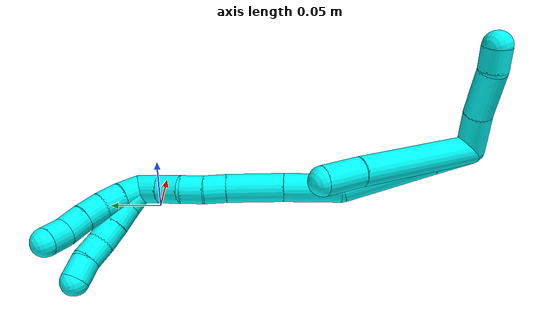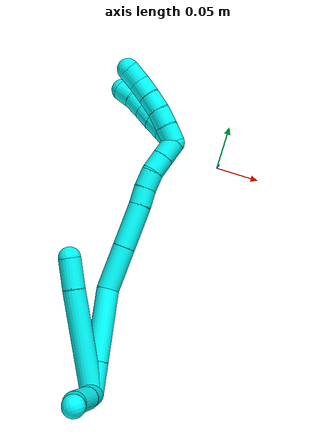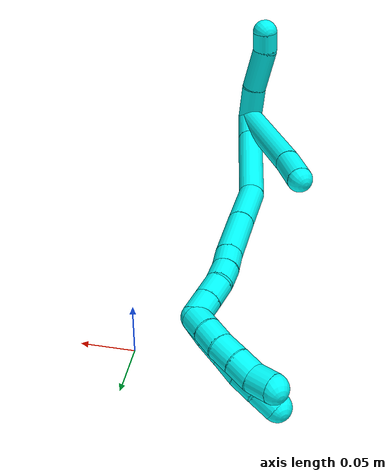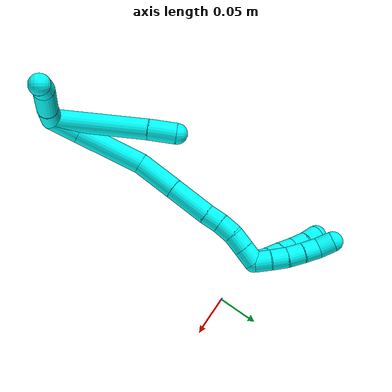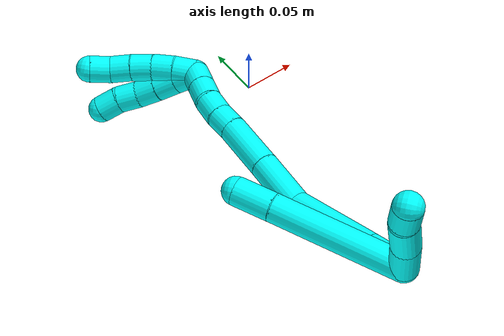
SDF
<sdf version="1.7">
 <world name="default">
  <model name="3">
   <static>0</static>
   <link name="3">
    <collision name="collision-cylinder-e_1_2_8">
     <pose>-0.012363 0.004339 -0.056637 -3.06513 -0.214303 2.45824</pose>
     <geometry><cylinder><radius>0.0125</radius><length>0.116265</length></cylinder></geometry>
     <surface>
      <friction><ode><mu>1.16</mu><mu2>1.16</mu2><slip1>0</slip1><slip2>0</slip2></ode></friction>
      <contact><ode><kp>1e+06</kp><kd>1</kd><max_vel>0</max_vel><min_depth>0.001</min_depth></ode></contact>
     </surface>
    </collision>
    <visual name="visual-cylinder-e_1_2_8">
     <pose>-0.012363 0.004339 -0.056637 -3.06513 -0.214303 2.45824</pose>
     <geometry><cylinder><radius>0.0125</radius><length>0.116265</length></cylinder></geometry>
     <material><ambient>0.003922 1 0.996078 1</ambient></material>
    </visual>
    <collision name="collision-cylinder-e_2_8_6">
     <pose>-0.027631 0.01086 -0.129745 -3.0099 -0.173122 1.84202</pose>
     <geometry><cylinder><radius>0.0125</radius><length>0.033735</length></cylinder></geometry>
     <surface>
      <friction><ode><mu>1.16</mu><mu2>1.16</mu2><slip1>0</slip1><slip2>0</slip2></ode></friction>
      <contact><ode><kp>1e+06</kp><kd>1</kd><max_vel>0</max_vel><min_depth>0.001</min_depth></ode></contact>
     </surface>
    </collision>
    <visual name="visual-cylinder-e_2_8_6">
     <pose>-0.027631 0.01086 -0.129745 -3.0099 -0.173122 1.84202</pose>
     <geometry><cylinder><radius>0.0125</radius><length>0.033735</length></cylinder></geometry>
     <material><ambient>0.003922 1 0.996078 1</ambient></material>
    </visual>
    <collision name="collision-cylinder-e_1_2_9">
     <pose>-0.015272 -0.009815 0.000719 1.49771 -0.998368 -0.938116</pose>
     <geometry><cylinder><radius>0.0125</radius><length>0.036338</length></cylinder></geometry>
     <surface>
      <friction><ode><mu>1.16</mu><mu2>1.16</mu2><slip1>0</slip1><slip2>0</slip2></ode></friction>
      <contact><ode><kp>1e+06</kp><kd>1</kd><max_vel>0</max_vel><min_depth>0.001</min_depth></ode></contact>
     </surface>
    </collision>
    <visual name="visual-cylinder-e_1_2_9">
     <pose>-0.015272 -0.009815 0.000719 1.49771 -0.998368 -0.938116</pose>
     <geometry><cylinder><radius>0.0125</radius><length>0.036338</length></cylinder></geometry>
     <material><ambient>0.003922 1 0.996078 1</ambient></material>
    </visual>
    <collision name="collision-cylinder-e_2_9_10">
     <pose>-0.047089 -0.033804 0.00138 1.57485 -0.862434 -0.86552</pose>
     <geometry><cylinder><radius>0.0125</radius><length>0.04357</length></cylinder></geometry>
     <surface>
      <friction><ode><mu>1.16</mu><mu2>1.16</mu2><slip1>0</slip1><slip2>0</slip2></ode></friction>
      <contact><ode><kp>1e+06</kp><kd>1</kd><max_vel>0</max_vel><min_depth>0.001</min_depth></ode></contact>
     </surface>
    </collision>
    <visual name="visual-cylinder-e_2_9_10">
     <pose>-0.047089 -0.033804 0.00138 1.57485 -0.862434 -0.86552</pose>
     <geometry><cylinder><radius>0.0125</radius><length>0.04357</length></cylinder></geometry>
     <material><ambient>0.003922 1 0.996078 1</ambient></material>
    </visual>
    <collision name="collision-cylinder-e_3_10_5">
     <pose>-0.072526 -0.05247 0.002607 1.29238 -1.08695 -0.855116</pose>
     <geometry><cylinder><radius>0.0125</radius><length>0.020093</length></cylinder></geometry>
     <surface>
      <friction><ode><mu>1.16</mu><mu2>1.16</mu2><slip1>0</slip1><slip2>0</slip2></ode></friction>
      <contact><ode><kp>1e+06</kp><kd>1</kd><max_vel>0</max_vel><min_depth>0.001</min_depth></ode></contact>
     </surface>
    </collision>
    <visual name="visual-cylinder-e_3_10_5">
     <pose>-0.072526 -0.05247 0.002607 1.29238 -1.08695 -0.855116</pose>
     <geometry><cylinder><radius>0.0125</radius><length>0.020093</length></cylinder></geometry>
     <material><ambient>0.003922 1 0.996078 1</ambient></material>
    </visual>
    <collision name="collision-cylinder-e_1_2_11">
     <pose>-0.001261 0.008279 -0.015711 -2.6566 -0.070871 0.284689</pose>
     <geometry><cylinder><radius>0.0125</radius><length>0.035608</length></cylinder></geometry>
     <surface>
      <friction><ode><mu>1.16</mu><mu2>1.16</mu2><slip1>0</slip1><slip2>0</slip2></ode></friction>
      <contact><ode><kp>1e+06</kp><kd>1</kd><max_vel>0</max_vel><min_depth>0.001</min_depth></ode></contact>
     </surface>
    </collision>
    <visual name="visual-cylinder-e_1_2_11">
     <pose>-0.001261 0.008279 -0.015711 -2.6566 -0.070871 0.284689</pose>
     <geometry><cylinder><radius>0.0125</radius><length>0.035608</length></cylinder></geometry>
     <material><ambient>0.003922 1 0.996078 1</ambient></material>
    </visual>
    <collision name="collision-cylinder-e_2_11_12">
     <pose>-0.005112 0.035639 -0.067488 -2.65498 -0.063401 0.254128</pose>
     <geometry><cylinder><radius>0.0125</radius><length>0.081768</length></cylinder></geometry>
     <surface>
      <friction><ode><mu>1.16</mu><mu2>1.16</mu2><slip1>0</slip1><slip2>0</slip2></ode></friction>
      <contact><ode><kp>1e+06</kp><kd>1</kd><max_vel>0</max_vel><min_depth>0.001</min_depth></ode></contact>
     </surface>
    </collision>
    <visual name="visual-cylinder-e_2_11_12">
     <pose>-0.005112 0.035639 -0.067488 -2.65498 -0.063401 0.254128</pose>
     <geometry><cylinder><radius>0.0125</radius><length>0.081768</length></cylinder></geometry>
     <material><ambient>0.003922 1 0.996078 1</ambient></material>
    </visual>
    <collision name="collision-cylinder-e_3_12_13">
     <pose>-0.016275 0.068397 -0.122696 -2.52119 -0.349407 1.00665</pose>
     <geometry><cylinder><radius>0.0125</radius><length>0.050081</length></cylinder></geometry>
     <surface>
      <friction><ode><mu>1.16</mu><mu2>1.16</mu2><slip1>0</slip1><slip2>0</slip2></ode></friction>
      <contact><ode><kp>1e+06</kp><kd>1</kd><max_vel>0</max_vel><min_depth>0.001</min_depth></ode></contact>
     </surface>
    </collision>
    <visual name="visual-cylinder-e_3_12_13">
     <pose>-0.016275 0.068397 -0.122696 -2.52119 -0.349407 1.00665</pose>
     <geometry><cylinder><radius>0.0125</radius><length>0.050081</length></cylinder></geometry>
     <material><ambient>0.003922 1 0.996078 1</ambient></material>
    </visual>
    <collision name="collision-cylinder-e_4_13_14">
     <pose>-0.032665 0.096115 -0.16101 -2.50949 -0.317854 0.911443</pose>
     <geometry><cylinder><radius>0.0125</radius><length>0.05003</length></cylinder></geometry>
     <surface>
      <friction><ode><mu>1.16</mu><mu2>1.16</mu2><slip1>0</slip1><slip2>0</slip2></ode></friction>
      <contact><ode><kp>1e+06</kp><kd>1</kd><max_vel>0</max_vel><min_depth>0.001</min_depth></ode></contact>
     </surface>
    </collision>
    <visual name="visual-cylinder-e_4_13_14">
     <pose>-0.032665 0.096115 -0.16101 -2.50949 -0.317854 0.911443</pose>
     <geometry><cylinder><radius>0.0125</radius><length>0.05003</length></cylinder></geometry>
     <material><ambient>0.003922 1 0.996078 1</ambient></material>
    </visual>
    <collision name="collision-cylinder-e_5_14_15">
     <pose>-0.043286 0.115294 -0.188294 -2.57694 -0.283953 0.915683</pose>
     <geometry><cylinder><radius>0.0125</radius><length>0.02001</length></cylinder></geometry>
     <surface>
      <friction><ode><mu>1.16</mu><mu2>1.16</mu2><slip1>0</slip1><slip2>0</slip2></ode></friction>
      <contact><ode><kp>1e+06</kp><kd>1</kd><max_vel>0</max_vel><min_depth>0.001</min_depth></ode></contact>
     </surface>
    </collision>
    <visual name="visual-cylinder-e_5_14_15">
     <pose>-0.043286 0.115294 -0.188294 -2.57694 -0.283953 0.915683</pose>
     <geometry><cylinder><radius>0.0125</radius><length>0.02001</length></cylinder></geometry>
     <material><ambient>0.003922 1 0.996078 1</ambient></material>
    </visual>
    <collision name="collision-cylinder-e_6_15_16">
     <pose>-0.049515 0.126472 -0.203871 -2.4613 -0.342808 0.90982</pose>
     <geometry><cylinder><radius>0.0125</radius><length>0.020387</length></cylinder></geometry>
     <surface>
      <friction><ode><mu>1.16</mu><mu2>1.16</mu2><slip1>0</slip1><slip2>0</slip2></ode></friction>
      <contact><ode><kp>1e+06</kp><kd>1</kd><max_vel>0</max_vel><min_depth>0.001</min_depth></ode></contact>
     </surface>
    </collision>
    <visual name="visual-cylinder-e_6_15_16">
     <pose>-0.049515 0.126472 -0.203871 -2.4613 -0.342808 0.90982</pose>
     <geometry><cylinder><radius>0.0125</radius><length>0.020387</length></cylinder></geometry>
     <material><ambient>0.003922 1 0.996078 1</ambient></material>
    </visual>
    <collision name="collision-cylinder-e_7_16_17">
     <pose>-0.055744 0.140411 -0.217403 -2.22581 -0.274288 0.54609</pose>
     <geometry><cylinder><radius>0.0125</radius><length>0.020697</length></cylinder></geometry>
     <surface>
      <friction><ode><mu>1.16</mu><mu2>1.16</mu2><slip1>0</slip1><slip2>0</slip2></ode></friction>
      <contact><ode><kp>1e+06</kp><kd>1</kd><max_vel>0</max_vel><min_depth>0.001</min_depth></ode></contact>
     </surface>
    </collision>
    <visual name="visual-cylinder-e_7_16_17">
     <pose>-0.055744 0.140411 -0.217403 -2.22581 -0.274288 0.54609</pose>
     <geometry><cylinder><radius>0.0125</radius><length>0.020697</length></cylinder></geometry>
     <material><ambient>0.003922 1 0.996078 1</ambient></material>
    </visual>
    <collision name="collision-cylinder-e_8_17_1">
     <pose>-0.061395 0.156563 -0.229676 -2.2155 -0.269134 0.52962</pose>
     <geometry><cylinder><radius>0.0125</radius><length>0.02142</length></cylinder></geometry>
     <surface>
      <friction><ode><mu>1.16</mu><mu2>1.16</mu2><slip1>0</slip1><slip2>0</slip2></ode></friction>
      <contact><ode><kp>1e+06</kp><kd>1</kd><max_vel>0</max_vel><min_depth>0.001</min_depth></ode></contact>
     </surface>
    </collision>
    <visual name="visual-cylinder-e_8_17_1">
     <pose>-0.061395 0.156563 -0.229676 -2.2155 -0.269134 0.52962</pose>
     <geometry><cylinder><radius>0.0125</radius><length>0.02142</length></cylinder></geometry>
     <material><ambient>0.003922 1 0.996078 1</ambient></material>
    </visual>
    <collision name="collision-cylinder-e_1_1_18">
     <pose>-0.059323 0.164478 -0.24458 3.10292 0.514343 2.9948</pose>
     <geometry><cylinder><radius>0.0125</radius><length>0.02</length></cylinder></geometry>
     <surface>
      <friction><ode><mu>1.16</mu><mu2>1.16</mu2><slip1>0</slip1><slip2>0</slip2></ode></friction>
      <contact><ode><kp>1e+06</kp><kd>1</kd><max_vel>0</max_vel><min_depth>0.001</min_depth></ode></contact>
     </surface>
    </collision>
    <visual name="visual-cylinder-e_1_1_18">
     <pose>-0.059323 0.164478 -0.24458 3.10292 0.514343 2.9948</pose>
     <geometry><cylinder><radius>0.0125</radius><length>0.02</length></cylinder></geometry>
     <material><ambient>0.003922 1 0.996078 1</ambient></material>
    </visual>
    <collision name="collision-cylinder-e_2_18_19">
     <pose>-0.049395 0.163093 -0.261871 3.02015 0.524614 2.69624</pose>
     <geometry><cylinder><radius>0.0125</radius><length>0.02</length></cylinder></geometry>
     <surface>
      <friction><ode><mu>1.16</mu><mu2>1.16</mu2><slip1>0</slip1><slip2>0</slip2></ode></friction>
      <contact><ode><kp>1e+06</kp><kd>1</kd><max_vel>0</max_vel><min_depth>0.001</min_depth></ode></contact>
     </surface>
    </collision>
    <visual name="visual-cylinder-e_2_18_19">
     <pose>-0.049395 0.163093 -0.261871 3.02015 0.524614 2.69624</pose>
     <geometry><cylinder><radius>0.0125</radius><length>0.02</length></cylinder></geometry>
     <material><ambient>0.003922 1 0.996078 1</ambient></material>
    </visual>
    <collision name="collision-cylinder-e_3_19_20">
     <pose>-0.039694 0.161219 -0.279255 3.04801 0.488358 2.77003</pose>
     <geometry><cylinder><radius>0.0125</radius><length>0.02</length></cylinder></geometry>
     <surface>
      <friction><ode><mu>1.16</mu><mu2>1.16</mu2><slip1>0</slip1><slip2>0</slip2></ode></friction>
      <contact><ode><kp>1e+06</kp><kd>1</kd><max_vel>0</max_vel><min_depth>0.001</min_depth></ode></contact>
     </surface>
    </collision>
    <visual name="visual-cylinder-e_3_19_20">
     <pose>-0.039694 0.161219 -0.279255 3.04801 0.488358 2.77003</pose>
     <geometry><cylinder><radius>0.0125</radius><length>0.02</length></cylinder></geometry>
     <material><ambient>0.003922 1 0.996078 1</ambient></material>
    </visual>
    <collision name="collision-cylinder-e_4_20_21">
     <pose>-0.031353 0.158285 -0.297116 2.91308 0.373533 2.05009</pose>
     <geometry><cylinder><radius>0.0125</radius><length>0.02</length></cylinder></geometry>
     <surface>
      <friction><ode><mu>1.16</mu><mu2>1.16</mu2><slip1>0</slip1><slip2>0</slip2></ode></friction>
      <contact><ode><kp>1e+06</kp><kd>1</kd><max_vel>0</max_vel><min_depth>0.001</min_depth></ode></contact>
     </surface>
    </collision>
    <visual name="visual-cylinder-e_4_20_21">
     <pose>-0.031353 0.158285 -0.297116 2.91308 0.373533 2.05009</pose>
     <geometry><cylinder><radius>0.0125</radius><length>0.02</length></cylinder></geometry>
     <material><ambient>0.003922 1 0.996078 1</ambient></material>
    </visual>
    <collision name="collision-cylinder-e_5_21_4">
     <pose>-0.022049 0.153999 -0.314139 2.87443 0.601017 2.32327</pose>
     <geometry><cylinder><radius>0.0125</radius><length>0.02</length></cylinder></geometry>
     <surface>
      <friction><ode><mu>1.16</mu><mu2>1.16</mu2><slip1>0</slip1><slip2>0</slip2></ode></friction>
      <contact><ode><kp>1e+06</kp><kd>1</kd><max_vel>0</max_vel><min_depth>0.001</min_depth></ode></contact>
     </surface>
    </collision>
    <visual name="visual-cylinder-e_5_21_4">
     <pose>-0.022049 0.153999 -0.314139 2.87443 0.601017 2.32327</pose>
     <geometry><cylinder><radius>0.0125</radius><length>0.02</length></cylinder></geometry>
     <material><ambient>0.003922 1 0.996078 1</ambient></material>
    </visual>
    <collision name="collision-cylinder-e_1_1_22">
     <pose>-0.064724 0.16365 -0.2458 3.02469 -0.048186 -0.781255</pose>
     <geometry><cylinder><radius>0.0125</radius><length>0.02</length></cylinder></geometry>
     <surface>
      <friction><ode><mu>1.16</mu><mu2>1.16</mu2><slip1>0</slip1><slip2>0</slip2></ode></friction>
      <contact><ode><kp>1e+06</kp><kd>1</kd><max_vel>0</max_vel><min_depth>0.001</min_depth></ode></contact>
     </surface>
    </collision>
    <visual name="visual-cylinder-e_1_1_22">
     <pose>-0.064724 0.16365 -0.2458 3.02469 -0.048186 -0.781255</pose>
     <geometry><cylinder><radius>0.0125</radius><length>0.02</length></cylinder></geometry>
     <material><ambient>0.003922 1 0.996078 1</ambient></material>
    </visual>
    <collision name="collision-cylinder-e_2_22_23">
     <pose>-0.06469 0.161435 -0.265652 3.03626 0.051675 0.911586</pose>
     <geometry><cylinder><radius>0.0125</radius><length>0.02</length></cylinder></geometry>
     <surface>
      <friction><ode><mu>1.16</mu><mu2>1.16</mu2><slip1>0</slip1><slip2>0</slip2></ode></friction>
      <contact><ode><kp>1e+06</kp><kd>1</kd><max_vel>0</max_vel><min_depth>0.001</min_depth></ode></contact>
     </surface>
    </collision>
    <visual name="visual-cylinder-e_2_22_23">
     <pose>-0.06469 0.161435 -0.265652 3.03626 0.051675 0.911586</pose>
     <geometry><cylinder><radius>0.0125</radius><length>0.02</length></cylinder></geometry>
     <material><ambient>0.003922 1 0.996078 1</ambient></material>
    </visual>
    <collision name="collision-cylinder-e_3_23_24">
     <pose>-0.062937 0.158364 -0.285299 2.93649 0.123921 1.08502</pose>
     <geometry><cylinder><radius>0.0125</radius><length>0.02</length></cylinder></geometry>
     <surface>
      <friction><ode><mu>1.16</mu><mu2>1.16</mu2><slip1>0</slip1><slip2>0</slip2></ode></friction>
      <contact><ode><kp>1e+06</kp><kd>1</kd><max_vel>0</max_vel><min_depth>0.001</min_depth></ode></contact>
     </surface>
    </collision>
    <visual name="visual-cylinder-e_3_23_24">
     <pose>-0.062937 0.158364 -0.285299 2.93649 0.123921 1.08502</pose>
     <geometry><cylinder><radius>0.0125</radius><length>0.02</length></cylinder></geometry>
     <material><ambient>0.003922 1 0.996078 1</ambient></material>
    </visual>
    <collision name="collision-cylinder-e_4_24_25">
     <pose>-0.059669 0.154404 -0.304611 2.94225 0.204578 1.59687</pose>
     <geometry><cylinder><radius>0.0125</radius><length>0.02</length></cylinder></geometry>
     <surface>
      <friction><ode><mu>1.16</mu><mu2>1.16</mu2><slip1>0</slip1><slip2>0</slip2></ode></friction>
      <contact><ode><kp>1e+06</kp><kd>1</kd><max_vel>0</max_vel><min_depth>0.001</min_depth></ode></contact>
     </surface>
    </collision>
    <visual name="visual-cylinder-e_4_24_25">
     <pose>-0.059669 0.154404 -0.304611 2.94225 0.204578 1.59687</pose>
     <geometry><cylinder><radius>0.0125</radius><length>0.02</length></cylinder></geometry>
     <material><ambient>0.003922 1 0.996078 1</ambient></material>
    </visual>
    <collision name="collision-cylinder-e_5_25_3">
     <pose>-0.057621 0.148447 -0.323366 2.72815 0.001705 0.00813</pose>
     <geometry><cylinder><radius>0.0125</radius><length>0.02</length></cylinder></geometry>
     <surface>
      <friction><ode><mu>1.16</mu><mu2>1.16</mu2><slip1>0</slip1><slip2>0</slip2></ode></friction>
      <contact><ode><kp>1e+06</kp><kd>1</kd><max_vel>0</max_vel><min_depth>0.001</min_depth></ode></contact>
     </surface>
    </collision>
    <visual name="visual-cylinder-e_5_25_3">
     <pose>-0.057621 0.148447 -0.323366 2.72815 0.001705 0.00813</pose>
     <geometry><cylinder><radius>0.0125</radius><length>0.02</length></cylinder></geometry>
     <material><ambient>0.003922 1 0.996078 1</ambient></material>
    </visual>
    <collision name="collision-sphere-3">
     <pose>-0.057604 0.144429 -0.332524 0 -0 0</pose>
     <geometry><sphere><radius>0.0125</radius></sphere></geometry>
     <surface>
      <friction><ode><mu>1.16</mu><mu2>1.16</mu2><slip1>0</slip1><slip2>0</slip2></ode></friction>
      <contact><ode><kp>1e+06</kp><kd>1</kd><max_vel>0</max_vel><min_depth>0.001</min_depth></ode></contact>
     </surface>
    </collision>
    <visual name="visual-sphere-3">
     <pose>-0.057604 0.144429 -0.332524 0 -0 0</pose>
     <geometry><sphere><radius>0.0125</radius></sphere></geometry>
     <material><ambient>0.003922 1 0.996078 1</ambient></material>
    </visual>
    <collision name="collision-sphere-25">
     <pose>-0.057638 0.152465 -0.314209 0 -0 0</pose>
     <geometry><sphere><radius>0.0125</radius></sphere></geometry>
     <surface>
      <friction><ode><mu>1.16</mu><mu2>1.16</mu2><slip1>0</slip1><slip2>0</slip2></ode></friction>
      <contact><ode><kp>1e+06</kp><kd>1</kd><max_vel>0</max_vel><min_depth>0.001</min_depth></ode></contact>
     </surface>
    </collision>
    <visual name="visual-sphere-25">
     <pose>-0.057638 0.152465 -0.314209 0 -0 0</pose>
     <geometry><sphere><radius>0.0125</radius></sphere></geometry>
     <material><ambient>0.003922 1 0.996078 1</ambient></material>
    </visual>
    <collision name="collision-sphere-24">
     <pose>-0.061701 0.156343 -0.295014 0 -0 0</pose>
     <geometry><sphere><radius>0.0125</radius></sphere></geometry>
     <surface>
      <friction><ode><mu>1.16</mu><mu2>1.16</mu2><slip1>0</slip1><slip2>0</slip2></ode></friction>
      <contact><ode><kp>1e+06</kp><kd>1</kd><max_vel>0</max_vel><min_depth>0.001</min_depth></ode></contact>
     </surface>
    </collision>
    <visual name="visual-sphere-24">
     <pose>-0.061701 0.156343 -0.295014 0 -0 0</pose>
     <geometry><sphere><radius>0.0125</radius></sphere></geometry>
     <material><ambient>0.003922 1 0.996078 1</ambient></material>
    </visual>
    <collision name="collision-sphere-23">
     <pose>-0.064173 0.160385 -0.275583 0 -0 0</pose>
     <geometry><sphere><radius>0.0125</radius></sphere></geometry>
     <surface>
      <friction><ode><mu>1.16</mu><mu2>1.16</mu2><slip1>0</slip1><slip2>0</slip2></ode></friction>
      <contact><ode><kp>1e+06</kp><kd>1</kd><max_vel>0</max_vel><min_depth>0.001</min_depth></ode></contact>
     </surface>
    </collision>
    <visual name="visual-sphere-23">
     <pose>-0.064173 0.160385 -0.275583 0 -0 0</pose>
     <geometry><sphere><radius>0.0125</radius></sphere></geometry>
     <material><ambient>0.003922 1 0.996078 1</ambient></material>
    </visual>
    <collision name="collision-sphere-22">
     <pose>-0.065206 0.162485 -0.255721 0 -0 0</pose>
     <geometry><sphere><radius>0.0125</radius></sphere></geometry>
     <surface>
      <friction><ode><mu>1.16</mu><mu2>1.16</mu2><slip1>0</slip1><slip2>0</slip2></ode></friction>
      <contact><ode><kp>1e+06</kp><kd>1</kd><max_vel>0</max_vel><min_depth>0.001</min_depth></ode></contact>
     </surface>
    </collision>
    <visual name="visual-sphere-22">
     <pose>-0.065206 0.162485 -0.255721 0 -0 0</pose>
     <geometry><sphere><radius>0.0125</radius></sphere></geometry>
     <material><ambient>0.003922 1 0.996078 1</ambient></material>
    </visual>
    <collision name="collision-sphere-4">
     <pose>-0.016395 0.151821 -0.322094 0 -0 0</pose>
     <geometry><sphere><radius>0.0125</radius></sphere></geometry>
     <surface>
      <friction><ode><mu>1.16</mu><mu2>1.16</mu2><slip1>0</slip1><slip2>0</slip2></ode></friction>
      <contact><ode><kp>1e+06</kp><kd>1</kd><max_vel>0</max_vel><min_depth>0.001</min_depth></ode></contact>
     </surface>
    </collision>
    <visual name="visual-sphere-4">
     <pose>-0.016395 0.151821 -0.322094 0 -0 0</pose>
     <geometry><sphere><radius>0.0125</radius></sphere></geometry>
     <material><ambient>0.003922 1 0.996078 1</ambient></material>
    </visual>
    <collision name="collision-sphere-21">
     <pose>-0.027704 0.156176 -0.306184 0 -0 0</pose>
     <geometry><sphere><radius>0.0125</radius></sphere></geometry>
     <surface>
      <friction><ode><mu>1.16</mu><mu2>1.16</mu2><slip1>0</slip1><slip2>0</slip2></ode></friction>
      <contact><ode><kp>1e+06</kp><kd>1</kd><max_vel>0</max_vel><min_depth>0.001</min_depth></ode></contact>
     </surface>
    </collision>
    <visual name="visual-sphere-21">
     <pose>-0.027704 0.156176 -0.306184 0 -0 0</pose>
     <geometry><sphere><radius>0.0125</radius></sphere></geometry>
     <material><ambient>0.003922 1 0.996078 1</ambient></material>
    </visual>
    <collision name="collision-sphere-20">
     <pose>-0.035002 0.160394 -0.288047 0 -0 0</pose>
     <geometry><sphere><radius>0.0125</radius></sphere></geometry>
     <surface>
      <friction><ode><mu>1.16</mu><mu2>1.16</mu2><slip1>0</slip1><slip2>0</slip2></ode></friction>
      <contact><ode><kp>1e+06</kp><kd>1</kd><max_vel>0</max_vel><min_depth>0.001</min_depth></ode></contact>
     </surface>
    </collision>
    <visual name="visual-sphere-20">
     <pose>-0.035002 0.160394 -0.288047 0 -0 0</pose>
     <geometry><sphere><radius>0.0125</radius></sphere></geometry>
     <material><ambient>0.003922 1 0.996078 1</ambient></material>
    </visual>
    <collision name="collision-sphere-5">
     <pose>-0.081419 -0.056963 0.003891 0 -0 0</pose>
     <geometry><sphere><radius>0.0125</radius></sphere></geometry>
     <surface>
      <friction><ode><mu>1.16</mu><mu2>1.16</mu2><slip1>0</slip1><slip2>0</slip2></ode></friction>
      <contact><ode><kp>1e+06</kp><kd>1</kd><max_vel>0</max_vel><min_depth>0.001</min_depth></ode></contact>
     </surface>
    </collision>
    <visual name="visual-sphere-5">
     <pose>-0.081419 -0.056963 0.003891 0 -0 0</pose>
     <geometry><sphere><radius>0.0125</radius></sphere></geometry>
     <material><ambient>0.003922 1 0.996078 1</ambient></material>
    </visual>
    <collision name="collision-sphere-10">
     <pose>-0.063633 -0.047976 0.001322 0 -0 0</pose>
     <geometry><sphere><radius>0.0125</radius></sphere></geometry>
     <surface>
      <friction><ode><mu>1.16</mu><mu2>1.16</mu2><slip1>0</slip1><slip2>0</slip2></ode></friction>
      <contact><ode><kp>1e+06</kp><kd>1</kd><max_vel>0</max_vel><min_depth>0.001</min_depth></ode></contact>
     </surface>
    </collision>
    <visual name="visual-sphere-10">
     <pose>-0.063633 -0.047976 0.001322 0 -0 0</pose>
     <geometry><sphere><radius>0.0125</radius></sphere></geometry>
     <material><ambient>0.003922 1 0.996078 1</ambient></material>
    </visual>
    <collision name="collision-sphere-6">
     <pose>-0.030537 0.013042 -0.146216 0 -0 0</pose>
     <geometry><sphere><radius>0.0125</radius></sphere></geometry>
     <surface>
      <friction><ode><mu>1.16</mu><mu2>1.16</mu2><slip1>0</slip1><slip2>0</slip2></ode></friction>
      <contact><ode><kp>1e+06</kp><kd>1</kd><max_vel>0</max_vel><min_depth>0.001</min_depth></ode></contact>
     </surface>
    </collision>
    <visual name="visual-sphere-6">
     <pose>-0.030537 0.013042 -0.146216 0 -0 0</pose>
     <geometry><sphere><radius>0.0125</radius></sphere></geometry>
     <material><ambient>0.003922 1 0.996078 1</ambient></material>
    </visual>
    <collision name="collision-sphere-9">
     <pose>-0.030545 -0.019631 0.001437 0 -0 0</pose>
     <geometry><sphere><radius>0.0125</radius></sphere></geometry>
     <surface>
      <friction><ode><mu>1.16</mu><mu2>1.16</mu2><slip1>0</slip1><slip2>0</slip2></ode></friction>
      <contact><ode><kp>1e+06</kp><kd>1</kd><max_vel>0</max_vel><min_depth>0.001</min_depth></ode></contact>
     </surface>
    </collision>
    <visual name="visual-sphere-9">
     <pose>-0.030545 -0.019631 0.001437 0 -0 0</pose>
     <geometry><sphere><radius>0.0125</radius></sphere></geometry>
     <material><ambient>0.003922 1 0.996078 1</ambient></material>
    </visual>
    <collision name="collision-sphere-2">
     <geometry><sphere><radius>0.0125</radius></sphere></geometry>
     <surface>
      <friction><ode><mu>1.16</mu><mu2>1.16</mu2><slip1>0</slip1><slip2>0</slip2></ode></friction>
      <contact><ode><kp>1e+06</kp><kd>1</kd><max_vel>0</max_vel><min_depth>0.001</min_depth></ode></contact>
     </surface>
    </collision>
    <visual name="visual-sphere-2">
     <geometry><sphere><radius>0.0125</radius></sphere></geometry>
     <material><ambient>0.003922 1 0.996078 1</ambient></material>
    </visual>
    <collision name="collision-sphere-19">
     <pose>-0.044386 0.162045 -0.270462 0 -0 0</pose>
     <geometry><sphere><radius>0.0125</radius></sphere></geometry>
     <surface>
      <friction><ode><mu>1.16</mu><mu2>1.16</mu2><slip1>0</slip1><slip2>0</slip2></ode></friction>
      <contact><ode><kp>1e+06</kp><kd>1</kd><max_vel>0</max_vel><min_depth>0.001</min_depth></ode></contact>
     </surface>
    </collision>
    <visual name="visual-sphere-19">
     <pose>-0.044386 0.162045 -0.270462 0 -0 0</pose>
     <geometry><sphere><radius>0.0125</radius></sphere></geometry>
     <material><ambient>0.003922 1 0.996078 1</ambient></material>
    </visual>
    <collision name="collision-sphere-8">
     <pose>-0.024726 0.008679 -0.113273 0 -0 0</pose>
     <geometry><sphere><radius>0.0125</radius></sphere></geometry>
     <surface>
      <friction><ode><mu>1.16</mu><mu2>1.16</mu2><slip1>0</slip1><slip2>0</slip2></ode></friction>
      <contact><ode><kp>1e+06</kp><kd>1</kd><max_vel>0</max_vel><min_depth>0.001</min_depth></ode></contact>
     </surface>
    </collision>
    <visual name="visual-sphere-8">
     <pose>-0.024726 0.008679 -0.113273 0 -0 0</pose>
     <geometry><sphere><radius>0.0125</radius></sphere></geometry>
     <material><ambient>0.003922 1 0.996078 1</ambient></material>
    </visual>
    <collision name="collision-sphere-11">
     <pose>-0.002521 0.016559 -0.031422 0 -0 0</pose>
     <geometry><sphere><radius>0.0125</radius></sphere></geometry>
     <surface>
      <friction><ode><mu>1.16</mu><mu2>1.16</mu2><slip1>0</slip1><slip2>0</slip2></ode></friction>
      <contact><ode><kp>1e+06</kp><kd>1</kd><max_vel>0</max_vel><min_depth>0.001</min_depth></ode></contact>
     </surface>
    </collision>
    <visual name="visual-sphere-11">
     <pose>-0.002521 0.016559 -0.031422 0 -0 0</pose>
     <geometry><sphere><radius>0.0125</radius></sphere></geometry>
     <material><ambient>0.003922 1 0.996078 1</ambient></material>
    </visual>
    <collision name="collision-sphere-12">
     <pose>-0.007702 0.054719 -0.103553 0 -0 0</pose>
     <geometry><sphere><radius>0.0125</radius></sphere></geometry>
     <surface>
      <friction><ode><mu>1.16</mu><mu2>1.16</mu2><slip1>0</slip1><slip2>0</slip2></ode></friction>
      <contact><ode><kp>1e+06</kp><kd>1</kd><max_vel>0</max_vel><min_depth>0.001</min_depth></ode></contact>
     </surface>
    </collision>
    <visual name="visual-sphere-12">
     <pose>-0.007702 0.054719 -0.103553 0 -0 0</pose>
     <geometry><sphere><radius>0.0125</radius></sphere></geometry>
     <material><ambient>0.003922 1 0.996078 1</ambient></material>
    </visual>
    <collision name="collision-sphere-13">
     <pose>-0.024847 0.082075 -0.141839 0 -0 0</pose>
     <geometry><sphere><radius>0.0125</radius></sphere></geometry>
     <surface>
      <friction><ode><mu>1.16</mu><mu2>1.16</mu2><slip1>0</slip1><slip2>0</slip2></ode></friction>
      <contact><ode><kp>1e+06</kp><kd>1</kd><max_vel>0</max_vel><min_depth>0.001</min_depth></ode></contact>
     </surface>
    </collision>
    <visual name="visual-sphere-13">
     <pose>-0.024847 0.082075 -0.141839 0 -0 0</pose>
     <geometry><sphere><radius>0.0125</radius></sphere></geometry>
     <material><ambient>0.003922 1 0.996078 1</ambient></material>
    </visual>
    <collision name="collision-sphere-14">
     <pose>-0.040483 0.110154 -0.180181 0 -0 0</pose>
     <geometry><sphere><radius>0.0125</radius></sphere></geometry>
     <surface>
      <friction><ode><mu>1.16</mu><mu2>1.16</mu2><slip1>0</slip1><slip2>0</slip2></ode></friction>
      <contact><ode><kp>1e+06</kp><kd>1</kd><max_vel>0</max_vel><min_depth>0.001</min_depth></ode></contact>
     </surface>
    </collision>
    <visual name="visual-sphere-14">
     <pose>-0.040483 0.110154 -0.180181 0 -0 0</pose>
     <geometry><sphere><radius>0.0125</radius></sphere></geometry>
     <material><ambient>0.003922 1 0.996078 1</ambient></material>
    </visual>
    <collision name="collision-sphere-15">
     <pose>-0.046089 0.120433 -0.196408 0 -0 0</pose>
     <geometry><sphere><radius>0.0125</radius></sphere></geometry>
     <surface>
      <friction><ode><mu>1.16</mu><mu2>1.16</mu2><slip1>0</slip1><slip2>0</slip2></ode></friction>
      <contact><ode><kp>1e+06</kp><kd>1</kd><max_vel>0</max_vel><min_depth>0.001</min_depth></ode></contact>
     </surface>
    </collision>
    <visual name="visual-sphere-15">
     <pose>-0.046089 0.120433 -0.196408 0 -0 0</pose>
     <geometry><sphere><radius>0.0125</radius></sphere></geometry>
     <material><ambient>0.003922 1 0.996078 1</ambient></material>
    </visual>
    <collision name="collision-sphere-16">
     <pose>-0.052941 0.132511 -0.211334 0 -0 0</pose>
     <geometry><sphere><radius>0.0125</radius></sphere></geometry>
     <surface>
      <friction><ode><mu>1.16</mu><mu2>1.16</mu2><slip1>0</slip1><slip2>0</slip2></ode></friction>
      <contact><ode><kp>1e+06</kp><kd>1</kd><max_vel>0</max_vel><min_depth>0.001</min_depth></ode></contact>
     </surface>
    </collision>
    <visual name="visual-sphere-16">
     <pose>-0.052941 0.132511 -0.211334 0 -0 0</pose>
     <geometry><sphere><radius>0.0125</radius></sphere></geometry>
     <material><ambient>0.003922 1 0.996078 1</ambient></material>
    </visual>
    <collision name="collision-sphere-17">
     <pose>-0.058547 0.14831 -0.223471 0 -0 0</pose>
     <geometry><sphere><radius>0.0125</radius></sphere></geometry>
     <surface>
      <friction><ode><mu>1.16</mu><mu2>1.16</mu2><slip1>0</slip1><slip2>0</slip2></ode></friction>
      <contact><ode><kp>1e+06</kp><kd>1</kd><max_vel>0</max_vel><min_depth>0.001</min_depth></ode></contact>
     </surface>
    </collision>
    <visual name="visual-sphere-17">
     <pose>-0.058547 0.14831 -0.223471 0 -0 0</pose>
     <geometry><sphere><radius>0.0125</radius></sphere></geometry>
     <material><ambient>0.003922 1 0.996078 1</ambient></material>
    </visual>
    <collision name="collision-sphere-1">
     <pose>-0.064243 0.164815 -0.23588 0 -0 0</pose>
     <geometry><sphere><radius>0.0125</radius></sphere></geometry>
     <surface>
      <friction><ode><mu>1.16</mu><mu2>1.16</mu2><slip1>0</slip1><slip2>0</slip2></ode></friction>
      <contact><ode><kp>1e+06</kp><kd>1</kd><max_vel>0</max_vel><min_depth>0.001</min_depth></ode></contact>
     </surface>
    </collision>
    <visual name="visual-sphere-1">
     <pose>-0.064243 0.164815 -0.23588 0 -0 0</pose>
     <geometry><sphere><radius>0.0125</radius></sphere></geometry>
     <material><ambient>0.003922 1 0.996078 1</ambient></material>
    </visual>
    <collision name="collision-sphere-18">
     <pose>-0.054403 0.164142 -0.25328 0 -0 0</pose>
     <geometry><sphere><radius>0.0125</radius></sphere></geometry>
     <surface>
      <friction><ode><mu>1.16</mu><mu2>1.16</mu2><slip1>0</slip1><slip2>0</slip2></ode></friction>
      <contact><ode><kp>1e+06</kp><kd>1</kd><max_vel>0</max_vel><min_depth>0.001</min_depth></ode></contact>
     </surface>
    </collision>
    <visual name="visual-sphere-18">
     <pose>-0.054403 0.164142 -0.25328 0 -0 0</pose>
     <geometry><sphere><radius>0.0125</radius></sphere></geometry>
     <material><ambient>0.003922 1 0.996078 1</ambient></material>
    </visual>
    <inertial>
     <pose>-0.031892 0.069763 -0.139837 0 -0 0</pose>
     <mass>0.75</mass>
     <inertia>
      <ixx>8.5e-05</ixx>
      <ixy>0</ixy>
      <ixz>0</ixz>
      <iyy>0.000194</iyy>
      <iyz>0</iyz>
      <izz>-3.5e-05</izz>
     </inertia>
    </inertial>
   </link>
   <pose>-0.058822 -0.284909 0.095099 -1.39629 1.07338 -2.35033</pose>
  </model>
 </world>
</sdf>
